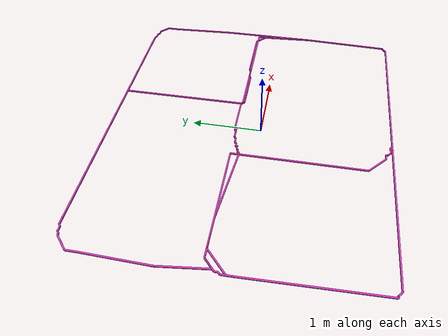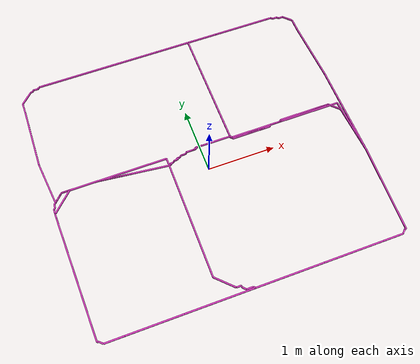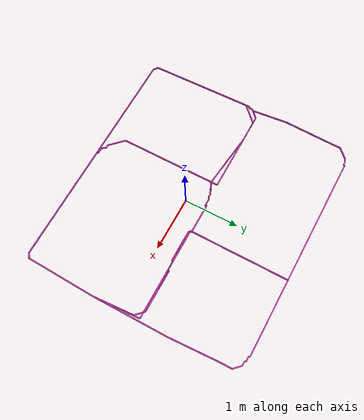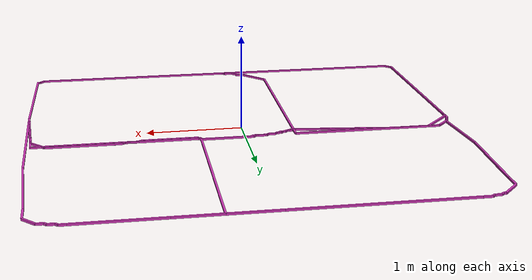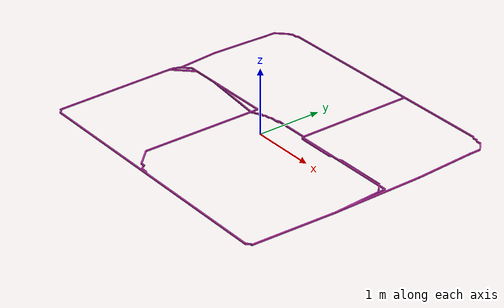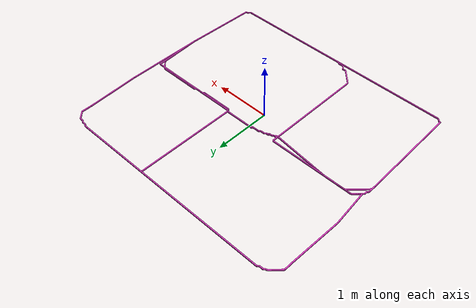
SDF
<sdf version="1.7">
 <world name="autonomous_map_3d_world">
  <model name="route_preview_code_transform_magenta">
   <static>1</static>
   <link name="route_preview_link">
    <visual name="route_segment_0000">
     <pose>-0.937500 2.179688 0.040000 0.000000 0.000000 0.000000</pose>
     <geometry><box><size>1.781250 0.020000 0.020000</size></box></geometry>
     <material>
      <script><name>Gazebo/RoutePreviewMagenta</name></script>
      <ambient>1 0 1 1</ambient>
      <diffuse>1 0 1 1</diffuse>
      <emissive>0.7 0 0.7 1</emissive>
     </material>
    </visual>
    <visual name="route_segment_0001">
     <pose>0.210938 2.179688 0.040000 0.000000 0.000000 0.000000</pose>
     <geometry><box><size>0.515625 0.020000 0.020000</size></box></geometry>
     <material>
      <script><name>Gazebo/RoutePreviewMagenta</name></script>
      <ambient>1 0 1 1</ambient>
      <diffuse>1 0 1 1</diffuse>
      <emissive>0.7 0 0.7 1</emissive>
     </material>
    </visual>
    <visual name="route_segment_0002">
     <pose>0.703125 2.179688 0.040000 0.000000 0.000000 0.000000</pose>
     <geometry><box><size>0.468750 0.020000 0.020000</size></box></geometry>
     <material>
      <script><name>Gazebo/RoutePreviewMagenta</name></script>
      <ambient>1 0 1 1</ambient>
      <diffuse>1 0 1 1</diffuse>
      <emissive>0.7 0 0.7 1</emissive>
     </material>
    </visual>
    <visual name="route_segment_0003">
     <pose>1.371094 2.179688 0.040000 0.000000 0.000000 0.000000</pose>
     <geometry><box><size>0.867188 0.020000 0.020000</size></box></geometry>
     <material>
      <script><name>Gazebo/RoutePreviewMagenta</name></script>
      <ambient>1 0 1 1</ambient>
      <diffuse>1 0 1 1</diffuse>
      <emissive>0.7 0 0.7 1</emissive>
     </material>
    </visual>
    <visual name="route_segment_0004">
     <pose>1.839844 2.179688 0.040000 0.000000 0.000000 0.000000</pose>
     <geometry><box><size>0.070312 0.020000 0.020000</size></box></geometry>
     <material>
      <script><name>Gazebo/RoutePreviewMagenta</name></script>
      <ambient>1 0 1 1</ambient>
      <diffuse>1 0 1 1</diffuse>
      <emissive>0.7 0 0.7 1</emissive>
     </material>
    </visual>
    <visual name="route_segment_0005">
     <pose>1.886719 2.167969 0.040000 0.000000 0.000000 -0.785398</pose>
     <geometry><box><size>0.033146 0.020000 0.020000</size></box></geometry>
     <material>
      <script><name>Gazebo/RoutePreviewMagenta</name></script>
      <ambient>1 0 1 1</ambient>
      <diffuse>1 0 1 1</diffuse>
      <emissive>0.7 0 0.7 1</emissive>
     </material>
    </visual>
    <visual name="route_segment_0006">
     <pose>1.933594 2.156250 0.040000 0.000000 0.000000 0.000000</pose>
     <geometry><box><size>0.070312 0.020000 0.020000</size></box></geometry>
     <material>
      <script><name>Gazebo/RoutePreviewMagenta</name></script>
      <ambient>1 0 1 1</ambient>
      <diffuse>1 0 1 1</diffuse>
      <emissive>0.7 0 0.7 1</emissive>
     </material>
    </visual>
    <visual name="route_segment_0007">
     <pose>1.980469 2.144531 0.040000 0.000000 0.000000 -0.785398</pose>
     <geometry><box><size>0.033146 0.020000 0.020000</size></box></geometry>
     <material>
      <script><name>Gazebo/RoutePreviewMagenta</name></script>
      <ambient>1 0 1 1</ambient>
      <diffuse>1 0 1 1</diffuse>
      <emissive>0.7 0 0.7 1</emissive>
     </material>
    </visual>
    <visual name="route_segment_0008">
     <pose>2.027344 2.132812 0.040000 0.000000 0.000000 0.000000</pose>
     <geometry><box><size>0.070312 0.020000 0.020000</size></box></geometry>
     <material>
      <script><name>Gazebo/RoutePreviewMagenta</name></script>
      <ambient>1 0 1 1</ambient>
      <diffuse>1 0 1 1</diffuse>
      <emissive>0.7 0 0.7 1</emissive>
     </material>
    </visual>
    <visual name="route_segment_0009">
     <pose>2.121094 2.074219 0.040000 0.000000 0.000000 -0.785398</pose>
     <geometry><box><size>0.165728 0.020000 0.020000</size></box></geometry>
     <material>
      <script><name>Gazebo/RoutePreviewMagenta</name></script>
      <ambient>1 0 1 1</ambient>
      <diffuse>1 0 1 1</diffuse>
      <emissive>0.7 0 0.7 1</emissive>
     </material>
    </visual>
    <visual name="route_segment_0010">
     <pose>2.179688 1.921875 0.040000 0.000000 0.000000 -1.570796</pose>
     <geometry><box><size>0.187500 0.020000 0.020000</size></box></geometry>
     <material>
      <script><name>Gazebo/RoutePreviewMagenta</name></script>
      <ambient>1 0 1 1</ambient>
      <diffuse>1 0 1 1</diffuse>
      <emissive>0.7 0 0.7 1</emissive>
     </material>
    </visual>
    <visual name="route_segment_0011">
     <pose>2.203125 1.359375 0.040000 0.000000 0.000000 -1.520838</pose>
     <geometry><box><size>0.938671 0.020000 0.020000</size></box></geometry>
     <material>
      <script><name>Gazebo/RoutePreviewMagenta</name></script>
      <ambient>1 0 1 1</ambient>
      <diffuse>1 0 1 1</diffuse>
      <emissive>0.7 0 0.7 1</emissive>
     </material>
    </visual>
    <visual name="route_segment_0012">
     <pose>2.226562 0.187500 0.040000 0.000000 0.000000 -1.570796</pose>
     <geometry><box><size>1.406250 0.020000 0.020000</size></box></geometry>
     <material>
      <script><name>Gazebo/RoutePreviewMagenta</name></script>
      <ambient>1 0 1 1</ambient>
      <diffuse>1 0 1 1</diffuse>
      <emissive>0.7 0 0.7 1</emissive>
     </material>
    </visual>
    <visual name="route_segment_0013">
     <pose>2.203125 -1.160156 0.040000 0.000000 0.000000 -1.607144</pose>
     <geometry><box><size>1.289914 0.020000 0.020000</size></box></geometry>
     <material>
      <script><name>Gazebo/RoutePreviewMagenta</name></script>
      <ambient>1 0 1 1</ambient>
      <diffuse>1 0 1 1</diffuse>
      <emissive>0.7 0 0.7 1</emissive>
     </material>
    </visual>
    <visual name="route_segment_0014">
     <pose>2.167969 -1.804688 0.040000 0.000000 0.000000 3.141593</pose>
     <geometry><box><size>0.023438 0.020000 0.020000</size></box></geometry>
     <material>
      <script><name>Gazebo/RoutePreviewMagenta</name></script>
      <ambient>1 0 1 1</ambient>
      <diffuse>1 0 1 1</diffuse>
      <emissive>0.7 0 0.7 1</emissive>
     </material>
    </visual>
    <visual name="route_segment_0015">
     <pose>2.132812 -1.828125 0.040000 0.000000 0.000000 -2.356194</pose>
     <geometry><box><size>0.066291 0.020000 0.020000</size></box></geometry>
     <material>
      <script><name>Gazebo/RoutePreviewMagenta</name></script>
      <ambient>1 0 1 1</ambient>
      <diffuse>1 0 1 1</diffuse>
      <emissive>0.7 0 0.7 1</emissive>
     </material>
    </visual>
    <visual name="route_segment_0016">
     <pose>1.957031 -1.851562 0.040000 0.000000 0.000000 3.141593</pose>
     <geometry><box><size>0.304688 0.020000 0.020000</size></box></geometry>
     <material>
      <script><name>Gazebo/RoutePreviewMagenta</name></script>
      <ambient>1 0 1 1</ambient>
      <diffuse>1 0 1 1</diffuse>
      <emissive>0.7 0 0.7 1</emissive>
     </material>
    </visual>
    <visual name="route_segment_0017">
     <pose>1.371094 -1.851562 0.040000 0.000000 0.000000 3.141593</pose>
     <geometry><box><size>0.867188 0.020000 0.020000</size></box></geometry>
     <material>
      <script><name>Gazebo/RoutePreviewMagenta</name></script>
      <ambient>1 0 1 1</ambient>
      <diffuse>1 0 1 1</diffuse>
      <emissive>0.7 0 0.7 1</emissive>
     </material>
    </visual>
    <visual name="route_segment_0018">
     <pose>0.445312 -1.851562 0.040000 0.000000 0.000000 3.141593</pose>
     <geometry><box><size>0.984375 0.020000 0.020000</size></box></geometry>
     <material>
      <script><name>Gazebo/RoutePreviewMagenta</name></script>
      <ambient>1 0 1 1</ambient>
      <diffuse>1 0 1 1</diffuse>
      <emissive>0.7 0 0.7 1</emissive>
     </material>
    </visual>
    <visual name="route_segment_0019">
     <pose>-0.539062 -1.851562 0.040000 0.000000 0.000000 3.141593</pose>
     <geometry><box><size>0.984375 0.020000 0.020000</size></box></geometry>
     <material>
      <script><name>Gazebo/RoutePreviewMagenta</name></script>
      <ambient>1 0 1 1</ambient>
      <diffuse>1 0 1 1</diffuse>
      <emissive>0.7 0 0.7 1</emissive>
     </material>
    </visual>
    <visual name="route_segment_0020">
     <pose>-1.429688 -1.851562 0.040000 0.000000 0.000000 3.141593</pose>
     <geometry><box><size>0.796875 0.020000 0.020000</size></box></geometry>
     <material>
      <script><name>Gazebo/RoutePreviewMagenta</name></script>
      <ambient>1 0 1 1</ambient>
      <diffuse>1 0 1 1</diffuse>
      <emissive>0.7 0 0.7 1</emissive>
     </material>
    </visual>
    <visual name="route_segment_0021">
     <pose>-1.968750 -1.851562 0.040000 0.000000 0.000000 3.141593</pose>
     <geometry><box><size>0.281250 0.020000 0.020000</size></box></geometry>
     <material>
      <script><name>Gazebo/RoutePreviewMagenta</name></script>
      <ambient>1 0 1 1</ambient>
      <diffuse>1 0 1 1</diffuse>
      <emissive>0.7 0 0.7 1</emissive>
     </material>
    </visual>
    <visual name="route_segment_0022">
     <pose>-2.132812 -1.828125 0.040000 0.000000 0.000000 2.356194</pose>
     <geometry><box><size>0.066291 0.020000 0.020000</size></box></geometry>
     <material>
      <script><name>Gazebo/RoutePreviewMagenta</name></script>
      <ambient>1 0 1 1</ambient>
      <diffuse>1 0 1 1</diffuse>
      <emissive>0.7 0 0.7 1</emissive>
     </material>
    </visual>
    <visual name="route_segment_0023">
     <pose>-2.167969 -1.804688 0.040000 0.000000 0.000000 3.141593</pose>
     <geometry><box><size>0.023438 0.020000 0.020000</size></box></geometry>
     <material>
      <script><name>Gazebo/RoutePreviewMagenta</name></script>
      <ambient>1 0 1 1</ambient>
      <diffuse>1 0 1 1</diffuse>
      <emissive>0.7 0 0.7 1</emissive>
     </material>
    </visual>
    <visual name="route_segment_0024">
     <pose>-2.203125 -0.902344 0.040000 0.000000 0.000000 1.596765</pose>
     <geometry><box><size>1.805296 0.020000 0.020000</size></box></geometry>
     <material>
      <script><name>Gazebo/RoutePreviewMagenta</name></script>
      <ambient>1 0 1 1</ambient>
      <diffuse>1 0 1 1</diffuse>
      <emissive>0.7 0 0.7 1</emissive>
     </material>
    </visual>
    <visual name="route_segment_0025">
     <pose>-2.226562 0.070312 0.040000 0.000000 0.000000 1.570796</pose>
     <geometry><box><size>0.140625 0.020000 0.020000</size></box></geometry>
     <material>
      <script><name>Gazebo/RoutePreviewMagenta</name></script>
      <ambient>1 0 1 1</ambient>
      <diffuse>1 0 1 1</diffuse>
      <emissive>0.7 0 0.7 1</emissive>
     </material>
    </visual>
    <visual name="route_segment_0026">
     <pose>-2.214844 0.152344 0.040000 0.000000 0.000000 0.785398</pose>
     <geometry><box><size>0.033146 0.020000 0.020000</size></box></geometry>
     <material>
      <script><name>Gazebo/RoutePreviewMagenta</name></script>
      <ambient>1 0 1 1</ambient>
      <diffuse>1 0 1 1</diffuse>
      <emissive>0.7 0 0.7 1</emissive>
     </material>
    </visual>
    <visual name="route_segment_0027">
     <pose>-2.203125 0.187500 0.040000 0.000000 0.000000 1.570796</pose>
     <geometry><box><size>0.046875 0.020000 0.020000</size></box></geometry>
     <material>
      <script><name>Gazebo/RoutePreviewMagenta</name></script>
      <ambient>1 0 1 1</ambient>
      <diffuse>1 0 1 1</diffuse>
      <emissive>0.7 0 0.7 1</emissive>
     </material>
    </visual>
    <visual name="route_segment_0028">
     <pose>-2.191406 0.222656 0.040000 0.000000 0.000000 0.785398</pose>
     <geometry><box><size>0.033146 0.020000 0.020000</size></box></geometry>
     <material>
      <script><name>Gazebo/RoutePreviewMagenta</name></script>
      <ambient>1 0 1 1</ambient>
      <diffuse>1 0 1 1</diffuse>
      <emissive>0.7 0 0.7 1</emissive>
     </material>
    </visual>
    <visual name="route_segment_0029">
     <pose>-2.214844 0.562500 0.040000 0.000000 0.000000 1.677532</pose>
     <geometry><box><size>0.660006 0.020000 0.020000</size></box></geometry>
     <material>
      <script><name>Gazebo/RoutePreviewMagenta</name></script>
      <ambient>1 0 1 1</ambient>
      <diffuse>1 0 1 1</diffuse>
      <emissive>0.7 0 0.7 1</emissive>
     </material>
    </visual>
    <visual name="route_segment_0030">
     <pose>-2.238281 1.347656 0.040000 0.000000 0.000000 1.545161</pose>
     <geometry><box><size>0.914363 0.020000 0.020000</size></box></geometry>
     <material>
      <script><name>Gazebo/RoutePreviewMagenta</name></script>
      <ambient>1 0 1 1</ambient>
      <diffuse>1 0 1 1</diffuse>
      <emissive>0.7 0 0.7 1</emissive>
     </material>
    </visual>
    <visual name="route_segment_0031">
     <pose>-2.226562 1.886719 0.040000 0.000000 0.000000 1.570796</pose>
     <geometry><box><size>0.164062 0.020000 0.020000</size></box></geometry>
     <material>
      <script><name>Gazebo/RoutePreviewMagenta</name></script>
      <ambient>1 0 1 1</ambient>
      <diffuse>1 0 1 1</diffuse>
      <emissive>0.7 0 0.7 1</emissive>
     </material>
    </visual>
    <visual name="route_segment_0032">
     <pose>-2.144531 2.050781 0.040000 0.000000 0.000000 0.785398</pose>
     <geometry><box><size>0.232019 0.020000 0.020000</size></box></geometry>
     <material>
      <script><name>Gazebo/RoutePreviewMagenta</name></script>
      <ambient>1 0 1 1</ambient>
      <diffuse>1 0 1 1</diffuse>
      <emissive>0.7 0 0.7 1</emissive>
     </material>
    </visual>
    <visual name="route_segment_0033">
     <pose>-2.050781 2.132812 0.040000 0.000000 0.000000 0.000000</pose>
     <geometry><box><size>0.023438 0.020000 0.020000</size></box></geometry>
     <material>
      <script><name>Gazebo/RoutePreviewMagenta</name></script>
      <ambient>1 0 1 1</ambient>
      <diffuse>1 0 1 1</diffuse>
      <emissive>0.7 0 0.7 1</emissive>
     </material>
    </visual>
    <visual name="route_segment_0034">
     <pose>-2.027344 2.144531 0.040000 0.000000 0.000000 0.785398</pose>
     <geometry><box><size>0.033146 0.020000 0.020000</size></box></geometry>
     <material>
      <script><name>Gazebo/RoutePreviewMagenta</name></script>
      <ambient>1 0 1 1</ambient>
      <diffuse>1 0 1 1</diffuse>
      <emissive>0.7 0 0.7 1</emissive>
     </material>
    </visual>
    <visual name="route_segment_0035">
     <pose>-1.980469 2.156250 0.040000 0.000000 0.000000 0.000000</pose>
     <geometry><box><size>0.070312 0.020000 0.020000</size></box></geometry>
     <material>
      <script><name>Gazebo/RoutePreviewMagenta</name></script>
      <ambient>1 0 1 1</ambient>
      <diffuse>1 0 1 1</diffuse>
      <emissive>0.7 0 0.7 1</emissive>
     </material>
    </visual>
    <visual name="route_segment_0036">
     <pose>-1.933594 2.167969 0.040000 0.000000 0.000000 0.785398</pose>
     <geometry><box><size>0.033146 0.020000 0.020000</size></box></geometry>
     <material>
      <script><name>Gazebo/RoutePreviewMagenta</name></script>
      <ambient>1 0 1 1</ambient>
      <diffuse>1 0 1 1</diffuse>
      <emissive>0.7 0 0.7 1</emissive>
     </material>
    </visual>
    <visual name="route_segment_0037">
     <pose>-1.875000 2.179688 0.040000 0.000000 0.000000 0.000000</pose>
     <geometry><box><size>0.093750 0.020000 0.020000</size></box></geometry>
     <material>
      <script><name>Gazebo/RoutePreviewMagenta</name></script>
      <ambient>1 0 1 1</ambient>
      <diffuse>1 0 1 1</diffuse>
      <emissive>0.7 0 0.7 1</emissive>
     </material>
    </visual>
    <visual name="route_segment_0038">
     <pose>0.468750 1.265625 0.040000 0.000000 0.000000 -1.570796</pose>
     <geometry><box><size>1.828125 0.020000 0.020000</size></box></geometry>
     <material>
      <script><name>Gazebo/RoutePreviewMagenta</name></script>
      <ambient>1 0 1 1</ambient>
      <diffuse>1 0 1 1</diffuse>
      <emissive>0.7 0 0.7 1</emissive>
     </material>
    </visual>
    <visual name="route_segment_0039">
     <pose>1.324219 0.351562 0.040000 0.000000 0.000000 0.000000</pose>
     <geometry><box><size>1.710938 0.020000 0.020000</size></box></geometry>
     <material>
      <script><name>Gazebo/RoutePreviewMagenta</name></script>
      <ambient>1 0 1 1</ambient>
      <diffuse>1 0 1 1</diffuse>
      <emissive>0.7 0 0.7 1</emissive>
     </material>
    </visual>
    <visual name="route_segment_0040">
     <pose>2.203125 -0.082031 0.040000 0.000000 0.000000 -1.516795</pose>
     <geometry><box><size>0.868453 0.020000 0.020000</size></box></geometry>
     <material>
      <script><name>Gazebo/RoutePreviewMagenta</name></script>
      <ambient>1 0 1 1</ambient>
      <diffuse>1 0 1 1</diffuse>
      <emissive>0.7 0 0.7 1</emissive>
     </material>
    </visual>
    <visual name="route_segment_0041">
     <pose>-2.121094 0.292969 0.040000 0.000000 0.000000 0.785398</pose>
     <geometry><box><size>0.165728 0.020000 0.020000</size></box></geometry>
     <material>
      <script><name>Gazebo/RoutePreviewMagenta</name></script>
      <ambient>1 0 1 1</ambient>
      <diffuse>1 0 1 1</diffuse>
      <emissive>0.7 0 0.7 1</emissive>
     </material>
    </visual>
    <visual name="route_segment_0042">
     <pose>-1.804688 0.351562 0.040000 0.000000 0.000000 0.000000</pose>
     <geometry><box><size>0.515625 0.020000 0.020000</size></box></geometry>
     <material>
      <script><name>Gazebo/RoutePreviewMagenta</name></script>
      <ambient>1 0 1 1</ambient>
      <diffuse>1 0 1 1</diffuse>
      <emissive>0.7 0 0.7 1</emissive>
     </material>
    </visual>
    <visual name="route_segment_0043">
     <pose>-1.031250 0.292969 0.040000 0.000000 0.000000 -0.113151</pose>
     <geometry><box><size>1.037887 0.020000 0.020000</size></box></geometry>
     <material>
      <script><name>Gazebo/RoutePreviewMagenta</name></script>
      <ambient>1 0 1 1</ambient>
      <diffuse>1 0 1 1</diffuse>
      <emissive>0.7 0 0.7 1</emissive>
     </material>
    </visual>
    <visual name="route_segment_0044">
     <pose>-0.503906 0.234375 0.040000 0.000000 0.000000 0.000000</pose>
     <geometry><box><size>0.023438 0.020000 0.020000</size></box></geometry>
     <material>
      <script><name>Gazebo/RoutePreviewMagenta</name></script>
      <ambient>1 0 1 1</ambient>
      <diffuse>1 0 1 1</diffuse>
      <emissive>0.7 0 0.7 1</emissive>
     </material>
    </visual>
    <visual name="route_segment_0045">
     <pose>-0.480469 0.246094 0.040000 0.000000 0.000000 0.785398</pose>
     <geometry><box><size>0.033146 0.020000 0.020000</size></box></geometry>
     <material>
      <script><name>Gazebo/RoutePreviewMagenta</name></script>
      <ambient>1 0 1 1</ambient>
      <diffuse>1 0 1 1</diffuse>
      <emissive>0.7 0 0.7 1</emissive>
     </material>
    </visual>
    <visual name="route_segment_0046">
     <pose>-0.457031 0.257812 0.040000 0.000000 0.000000 0.000000</pose>
     <geometry><box><size>0.023438 0.020000 0.020000</size></box></geometry>
     <material>
      <script><name>Gazebo/RoutePreviewMagenta</name></script>
      <ambient>1 0 1 1</ambient>
      <diffuse>1 0 1 1</diffuse>
      <emissive>0.7 0 0.7 1</emissive>
     </material>
    </visual>
    <visual name="route_segment_0047">
     <pose>-0.433594 0.269531 0.040000 0.000000 0.000000 0.785398</pose>
     <geometry><box><size>0.033146 0.020000 0.020000</size></box></geometry>
     <material>
      <script><name>Gazebo/RoutePreviewMagenta</name></script>
      <ambient>1 0 1 1</ambient>
      <diffuse>1 0 1 1</diffuse>
      <emissive>0.7 0 0.7 1</emissive>
     </material>
    </visual>
    <visual name="route_segment_0048">
     <pose>-0.398438 0.281250 0.040000 0.000000 0.000000 0.000000</pose>
     <geometry><box><size>0.046875 0.020000 0.020000</size></box></geometry>
     <material>
      <script><name>Gazebo/RoutePreviewMagenta</name></script>
      <ambient>1 0 1 1</ambient>
      <diffuse>1 0 1 1</diffuse>
      <emissive>0.7 0 0.7 1</emissive>
     </material>
    </visual>
    <visual name="route_segment_0049">
     <pose>-0.363281 0.292969 0.040000 0.000000 0.000000 0.785398</pose>
     <geometry><box><size>0.033146 0.020000 0.020000</size></box></geometry>
     <material>
      <script><name>Gazebo/RoutePreviewMagenta</name></script>
      <ambient>1 0 1 1</ambient>
      <diffuse>1 0 1 1</diffuse>
      <emissive>0.7 0 0.7 1</emissive>
     </material>
    </visual>
    <visual name="route_segment_0050">
     <pose>-0.339844 0.304688 0.040000 0.000000 0.000000 0.000000</pose>
     <geometry><box><size>0.023438 0.020000 0.020000</size></box></geometry>
     <material>
      <script><name>Gazebo/RoutePreviewMagenta</name></script>
      <ambient>1 0 1 1</ambient>
      <diffuse>1 0 1 1</diffuse>
      <emissive>0.7 0 0.7 1</emissive>
     </material>
    </visual>
    <visual name="route_segment_0051">
     <pose>-0.316406 0.316406 0.040000 0.000000 0.000000 0.785398</pose>
     <geometry><box><size>0.033146 0.020000 0.020000</size></box></geometry>
     <material>
      <script><name>Gazebo/RoutePreviewMagenta</name></script>
      <ambient>1 0 1 1</ambient>
      <diffuse>1 0 1 1</diffuse>
      <emissive>0.7 0 0.7 1</emissive>
     </material>
    </visual>
    <visual name="route_segment_0052">
     <pose>-0.269531 0.328125 0.040000 0.000000 0.000000 0.000000</pose>
     <geometry><box><size>0.070312 0.020000 0.020000</size></box></geometry>
     <material>
      <script><name>Gazebo/RoutePreviewMagenta</name></script>
      <ambient>1 0 1 1</ambient>
      <diffuse>1 0 1 1</diffuse>
      <emissive>0.7 0 0.7 1</emissive>
     </material>
    </visual>
    <visual name="route_segment_0053">
     <pose>-0.222656 0.339844 0.040000 0.000000 0.000000 0.785398</pose>
     <geometry><box><size>0.033146 0.020000 0.020000</size></box></geometry>
     <material>
      <script><name>Gazebo/RoutePreviewMagenta</name></script>
      <ambient>1 0 1 1</ambient>
      <diffuse>1 0 1 1</diffuse>
      <emissive>0.7 0 0.7 1</emissive>
     </material>
    </visual>
    <visual name="route_segment_0054">
     <pose>-0.140625 0.351562 0.040000 0.000000 0.000000 0.000000</pose>
     <geometry><box><size>0.140625 0.020000 0.020000</size></box></geometry>
     <material>
      <script><name>Gazebo/RoutePreviewMagenta</name></script>
      <ambient>1 0 1 1</ambient>
      <diffuse>1 0 1 1</diffuse>
      <emissive>0.7 0 0.7 1</emissive>
     </material>
    </visual>
    <visual name="route_segment_0055">
     <pose>-0.058594 0.363281 0.040000 0.000000 0.000000 0.785398</pose>
     <geometry><box><size>0.033146 0.020000 0.020000</size></box></geometry>
     <material>
      <script><name>Gazebo/RoutePreviewMagenta</name></script>
      <ambient>1 0 1 1</ambient>
      <diffuse>1 0 1 1</diffuse>
      <emissive>0.7 0 0.7 1</emissive>
     </material>
    </visual>
    <visual name="route_segment_0056">
     <pose>0.210938 0.375000 0.040000 0.000000 0.000000 0.000000</pose>
     <geometry><box><size>0.515625 0.020000 0.020000</size></box></geometry>
     <material>
      <script><name>Gazebo/RoutePreviewMagenta</name></script>
      <ambient>1 0 1 1</ambient>
      <diffuse>1 0 1 1</diffuse>
      <emissive>0.7 0 0.7 1</emissive>
     </material>
    </visual>
    <visual name="route_segment_0057">
     <pose>0.480469 0.363281 0.040000 0.000000 0.000000 -0.785398</pose>
     <geometry><box><size>0.033146 0.020000 0.020000</size></box></geometry>
     <material>
      <script><name>Gazebo/RoutePreviewMagenta</name></script>
      <ambient>1 0 1 1</ambient>
      <diffuse>1 0 1 1</diffuse>
      <emissive>0.7 0 0.7 1</emissive>
     </material>
    </visual>
    <visual name="route_segment_0058">
     <pose>0.492188 0.339844 0.040000 0.000000 0.000000 -1.570796</pose>
     <geometry><box><size>0.023438 0.020000 0.020000</size></box></geometry>
     <material>
      <script><name>Gazebo/RoutePreviewMagenta</name></script>
      <ambient>1 0 1 1</ambient>
      <diffuse>1 0 1 1</diffuse>
      <emissive>0.7 0 0.7 1</emissive>
     </material>
    </visual>
    <visual name="route_segment_0059">
     <pose>0.785156 0.328125 0.040000 0.000000 0.000000 0.000000</pose>
     <geometry><box><size>0.585938 0.020000 0.020000</size></box></geometry>
     <material>
      <script><name>Gazebo/RoutePreviewMagenta</name></script>
      <ambient>1 0 1 1</ambient>
      <diffuse>1 0 1 1</diffuse>
      <emissive>0.7 0 0.7 1</emissive>
     </material>
    </visual>
    <visual name="route_segment_0060">
     <pose>1.089844 0.339844 0.040000 0.000000 0.000000 0.785398</pose>
     <geometry><box><size>0.033146 0.020000 0.020000</size></box></geometry>
     <material>
      <script><name>Gazebo/RoutePreviewMagenta</name></script>
      <ambient>1 0 1 1</ambient>
      <diffuse>1 0 1 1</diffuse>
      <emissive>0.7 0 0.7 1</emissive>
     </material>
    </visual>
    <visual name="route_segment_0061">
     <pose>1.183594 0.351562 0.040000 0.000000 0.000000 0.000000</pose>
     <geometry><box><size>0.164062 0.020000 0.020000</size></box></geometry>
     <material>
      <script><name>Gazebo/RoutePreviewMagenta</name></script>
      <ambient>1 0 1 1</ambient>
      <diffuse>1 0 1 1</diffuse>
      <emissive>0.7 0 0.7 1</emissive>
     </material>
    </visual>
    <visual name="route_segment_0062">
     <pose>1.277344 0.363281 0.040000 0.000000 0.000000 0.785398</pose>
     <geometry><box><size>0.033146 0.020000 0.020000</size></box></geometry>
     <material>
      <script><name>Gazebo/RoutePreviewMagenta</name></script>
      <ambient>1 0 1 1</ambient>
      <diffuse>1 0 1 1</diffuse>
      <emissive>0.7 0 0.7 1</emissive>
     </material>
    </visual>
    <visual name="route_segment_0063">
     <pose>1.664062 0.375000 0.040000 0.000000 0.000000 0.000000</pose>
     <geometry><box><size>0.750000 0.020000 0.020000</size></box></geometry>
     <material>
      <script><name>Gazebo/RoutePreviewMagenta</name></script>
      <ambient>1 0 1 1</ambient>
      <diffuse>1 0 1 1</diffuse>
      <emissive>0.7 0 0.7 1</emissive>
     </material>
    </visual>
    <visual name="route_segment_0064">
     <pose>2.109375 0.304688 0.040000 0.000000 0.000000 -0.785398</pose>
     <geometry><box><size>0.198874 0.020000 0.020000</size></box></geometry>
     <material>
      <script><name>Gazebo/RoutePreviewMagenta</name></script>
      <ambient>1 0 1 1</ambient>
      <diffuse>1 0 1 1</diffuse>
      <emissive>0.7 0 0.7 1</emissive>
     </material>
    </visual>
    <visual name="route_segment_0065">
     <pose>2.203125 -0.140625 0.040000 0.000000 0.000000 -1.508378</pose>
     <geometry><box><size>0.751463 0.020000 0.020000</size></box></geometry>
     <material>
      <script><name>Gazebo/RoutePreviewMagenta</name></script>
      <ambient>1 0 1 1</ambient>
      <diffuse>1 0 1 1</diffuse>
      <emissive>0.7 0 0.7 1</emissive>
     </material>
    </visual>
    <visual name="route_segment_0066">
     <pose>-0.058594 -1.839844 0.040000 0.000000 0.000000 2.356194</pose>
     <geometry><box><size>0.033146 0.020000 0.020000</size></box></geometry>
     <material>
      <script><name>Gazebo/RoutePreviewMagenta</name></script>
      <ambient>1 0 1 1</ambient>
      <diffuse>1 0 1 1</diffuse>
      <emissive>0.7 0 0.7 1</emissive>
     </material>
    </visual>
    <visual name="route_segment_0067">
     <pose>-0.117188 -1.828125 0.040000 0.000000 0.000000 3.141593</pose>
     <geometry><box><size>0.093750 0.020000 0.020000</size></box></geometry>
     <material>
      <script><name>Gazebo/RoutePreviewMagenta</name></script>
      <ambient>1 0 1 1</ambient>
      <diffuse>1 0 1 1</diffuse>
      <emissive>0.7 0 0.7 1</emissive>
     </material>
    </visual>
    <visual name="route_segment_0068">
     <pose>-0.187500 -1.804688 0.040000 0.000000 0.000000 2.356194</pose>
     <geometry><box><size>0.066291 0.020000 0.020000</size></box></geometry>
     <material>
      <script><name>Gazebo/RoutePreviewMagenta</name></script>
      <ambient>1 0 1 1</ambient>
      <diffuse>1 0 1 1</diffuse>
      <emissive>0.7 0 0.7 1</emissive>
     </material>
    </visual>
    <visual name="route_segment_0069">
     <pose>-0.210938 -1.769531 0.040000 0.000000 0.000000 1.570796</pose>
     <geometry><box><size>0.023438 0.020000 0.020000</size></box></geometry>
     <material>
      <script><name>Gazebo/RoutePreviewMagenta</name></script>
      <ambient>1 0 1 1</ambient>
      <diffuse>1 0 1 1</diffuse>
      <emissive>0.7 0 0.7 1</emissive>
     </material>
    </visual>
    <visual name="route_segment_0070">
     <pose>-0.246094 -1.757812 0.040000 0.000000 0.000000 3.141593</pose>
     <geometry><box><size>0.070312 0.020000 0.020000</size></box></geometry>
     <material>
      <script><name>Gazebo/RoutePreviewMagenta</name></script>
      <ambient>1 0 1 1</ambient>
      <diffuse>1 0 1 1</diffuse>
      <emissive>0.7 0 0.7 1</emissive>
     </material>
    </visual>
    <visual name="route_segment_0071">
     <pose>-0.398438 -1.640625 0.040000 0.000000 0.000000 2.356194</pose>
     <geometry><box><size>0.331456 0.020000 0.020000</size></box></geometry>
     <material>
      <script><name>Gazebo/RoutePreviewMagenta</name></script>
      <ambient>1 0 1 1</ambient>
      <diffuse>1 0 1 1</diffuse>
      <emissive>0.7 0 0.7 1</emissive>
     </material>
    </visual>
    <visual name="route_segment_0072">
     <pose>-0.515625 -0.585938 0.040000 0.000000 0.000000 1.570796</pose>
     <geometry><box><size>1.875000 0.020000 0.020000</size></box></geometry>
     <material>
      <script><name>Gazebo/RoutePreviewMagenta</name></script>
      <ambient>1 0 1 1</ambient>
      <diffuse>1 0 1 1</diffuse>
      <emissive>0.7 0 0.7 1</emissive>
     </material>
    </visual>
    <visual name="route_segment_0073">
     <pose>-1.230469 0.351562 0.040000 0.000000 0.000000 3.141593</pose>
     <geometry><box><size>1.429688 0.020000 0.020000</size></box></geometry>
     <material>
      <script><name>Gazebo/RoutePreviewMagenta</name></script>
      <ambient>1 0 1 1</ambient>
      <diffuse>1 0 1 1</diffuse>
      <emissive>0.7 0 0.7 1</emissive>
     </material>
    </visual>
    <visual name="route_segment_0074">
     <pose>-2.085938 0.210938 0.040000 0.000000 0.000000 -2.356194</pose>
     <geometry><box><size>0.397748 0.020000 0.020000</size></box></geometry>
     <material>
      <script><name>Gazebo/RoutePreviewMagenta</name></script>
      <ambient>1 0 1 1</ambient>
      <diffuse>1 0 1 1</diffuse>
      <emissive>0.7 0 0.7 1</emissive>
     </material>
    </visual>
    <visual name="route_segment_0075">
     <pose>-2.226562 0.035156 0.040000 0.000000 0.000000 -1.570796</pose>
     <geometry><box><size>0.070312 0.020000 0.020000</size></box></geometry>
     <material>
      <script><name>Gazebo/RoutePreviewMagenta</name></script>
      <ambient>1 0 1 1</ambient>
      <diffuse>1 0 1 1</diffuse>
      <emissive>0.7 0 0.7 1</emissive>
     </material>
    </visual>
    <visual name="route_segment_0076">
     <pose>2.203125 -0.140625 0.040000 0.000000 0.000000 1.633215</pose>
     <geometry><box><size>0.751463 0.020000 0.020000</size></box></geometry>
     <material>
      <script><name>Gazebo/RoutePreviewMagenta</name></script>
      <ambient>1 0 1 1</ambient>
      <diffuse>1 0 1 1</diffuse>
      <emissive>0.7 0 0.7 1</emissive>
     </material>
    </visual>
    <visual name="route_segment_0077">
     <pose>2.109375 0.304688 0.040000 0.000000 0.000000 2.356194</pose>
     <geometry><box><size>0.198874 0.020000 0.020000</size></box></geometry>
     <material>
      <script><name>Gazebo/RoutePreviewMagenta</name></script>
      <ambient>1 0 1 1</ambient>
      <diffuse>1 0 1 1</diffuse>
      <emissive>0.7 0 0.7 1</emissive>
     </material>
    </visual>
    <visual name="route_segment_0078">
     <pose>1.652344 0.375000 0.040000 0.000000 0.000000 3.141593</pose>
     <geometry><box><size>0.773438 0.020000 0.020000</size></box></geometry>
     <material>
      <script><name>Gazebo/RoutePreviewMagenta</name></script>
      <ambient>1 0 1 1</ambient>
      <diffuse>1 0 1 1</diffuse>
      <emissive>0.7 0 0.7 1</emissive>
     </material>
    </visual>
    <visual name="route_segment_0079">
     <pose>1.253906 0.363281 0.040000 0.000000 0.000000 -2.356194</pose>
     <geometry><box><size>0.033146 0.020000 0.020000</size></box></geometry>
     <material>
      <script><name>Gazebo/RoutePreviewMagenta</name></script>
      <ambient>1 0 1 1</ambient>
      <diffuse>1 0 1 1</diffuse>
      <emissive>0.7 0 0.7 1</emissive>
     </material>
    </visual>
    <visual name="route_segment_0080">
     <pose>1.171875 0.351562 0.040000 0.000000 0.000000 3.141593</pose>
     <geometry><box><size>0.140625 0.020000 0.020000</size></box></geometry>
     <material>
      <script><name>Gazebo/RoutePreviewMagenta</name></script>
      <ambient>1 0 1 1</ambient>
      <diffuse>1 0 1 1</diffuse>
      <emissive>0.7 0 0.7 1</emissive>
     </material>
    </visual>
    <visual name="route_segment_0081">
     <pose>1.089844 0.339844 0.040000 0.000000 0.000000 -2.356194</pose>
     <geometry><box><size>0.033146 0.020000 0.020000</size></box></geometry>
     <material>
      <script><name>Gazebo/RoutePreviewMagenta</name></script>
      <ambient>1 0 1 1</ambient>
      <diffuse>1 0 1 1</diffuse>
      <emissive>0.7 0 0.7 1</emissive>
     </material>
    </visual>
    <visual name="route_segment_0082">
     <pose>0.785156 0.328125 0.040000 0.000000 0.000000 3.141593</pose>
     <geometry><box><size>0.585938 0.020000 0.020000</size></box></geometry>
     <material>
      <script><name>Gazebo/RoutePreviewMagenta</name></script>
      <ambient>1 0 1 1</ambient>
      <diffuse>1 0 1 1</diffuse>
      <emissive>0.7 0 0.7 1</emissive>
     </material>
    </visual>
    <visual name="route_segment_0083">
     <pose>0.492188 0.339844 0.040000 0.000000 0.000000 1.570796</pose>
     <geometry><box><size>0.023438 0.020000 0.020000</size></box></geometry>
     <material>
      <script><name>Gazebo/RoutePreviewMagenta</name></script>
      <ambient>1 0 1 1</ambient>
      <diffuse>1 0 1 1</diffuse>
      <emissive>0.7 0 0.7 1</emissive>
     </material>
    </visual>
    <visual name="route_segment_0084">
     <pose>0.480469 0.363281 0.040000 0.000000 0.000000 2.356194</pose>
     <geometry><box><size>0.033146 0.020000 0.020000</size></box></geometry>
     <material>
      <script><name>Gazebo/RoutePreviewMagenta</name></script>
      <ambient>1 0 1 1</ambient>
      <diffuse>1 0 1 1</diffuse>
      <emissive>0.7 0 0.7 1</emissive>
     </material>
    </visual>
    <visual name="route_segment_0085">
     <pose>0.199219 0.375000 0.040000 0.000000 0.000000 3.141593</pose>
     <geometry><box><size>0.539062 0.020000 0.020000</size></box></geometry>
     <material>
      <script><name>Gazebo/RoutePreviewMagenta</name></script>
      <ambient>1 0 1 1</ambient>
      <diffuse>1 0 1 1</diffuse>
      <emissive>0.7 0 0.7 1</emissive>
     </material>
    </visual>
    <visual name="route_segment_0086">
     <pose>-0.082031 0.363281 0.040000 0.000000 0.000000 -2.356194</pose>
     <geometry><box><size>0.033146 0.020000 0.020000</size></box></geometry>
     <material>
      <script><name>Gazebo/RoutePreviewMagenta</name></script>
      <ambient>1 0 1 1</ambient>
      <diffuse>1 0 1 1</diffuse>
      <emissive>0.7 0 0.7 1</emissive>
     </material>
    </visual>
    <visual name="route_segment_0087">
     <pose>-0.152344 0.351562 0.040000 0.000000 0.000000 3.141593</pose>
     <geometry><box><size>0.117188 0.020000 0.020000</size></box></geometry>
     <material>
      <script><name>Gazebo/RoutePreviewMagenta</name></script>
      <ambient>1 0 1 1</ambient>
      <diffuse>1 0 1 1</diffuse>
      <emissive>0.7 0 0.7 1</emissive>
     </material>
    </visual>
    <visual name="route_segment_0088">
     <pose>-0.222656 0.339844 0.040000 0.000000 0.000000 -2.356194</pose>
     <geometry><box><size>0.033146 0.020000 0.020000</size></box></geometry>
     <material>
      <script><name>Gazebo/RoutePreviewMagenta</name></script>
      <ambient>1 0 1 1</ambient>
      <diffuse>1 0 1 1</diffuse>
      <emissive>0.7 0 0.7 1</emissive>
     </material>
    </visual>
    <visual name="route_segment_0089">
     <pose>-0.269531 0.328125 0.040000 0.000000 0.000000 3.141593</pose>
     <geometry><box><size>0.070312 0.020000 0.020000</size></box></geometry>
     <material>
      <script><name>Gazebo/RoutePreviewMagenta</name></script>
      <ambient>1 0 1 1</ambient>
      <diffuse>1 0 1 1</diffuse>
      <emissive>0.7 0 0.7 1</emissive>
     </material>
    </visual>
    <visual name="route_segment_0090">
     <pose>-0.316406 0.316406 0.040000 0.000000 0.000000 -2.356194</pose>
     <geometry><box><size>0.033146 0.020000 0.020000</size></box></geometry>
     <material>
      <script><name>Gazebo/RoutePreviewMagenta</name></script>
      <ambient>1 0 1 1</ambient>
      <diffuse>1 0 1 1</diffuse>
      <emissive>0.7 0 0.7 1</emissive>
     </material>
    </visual>
    <visual name="route_segment_0091">
     <pose>-0.351562 0.304688 0.040000 0.000000 0.000000 3.141593</pose>
     <geometry><box><size>0.046875 0.020000 0.020000</size></box></geometry>
     <material>
      <script><name>Gazebo/RoutePreviewMagenta</name></script>
      <ambient>1 0 1 1</ambient>
      <diffuse>1 0 1 1</diffuse>
      <emissive>0.7 0 0.7 1</emissive>
     </material>
    </visual>
    <visual name="route_segment_0092">
     <pose>-0.386719 0.292969 0.040000 0.000000 0.000000 -2.356194</pose>
     <geometry><box><size>0.033146 0.020000 0.020000</size></box></geometry>
     <material>
      <script><name>Gazebo/RoutePreviewMagenta</name></script>
      <ambient>1 0 1 1</ambient>
      <diffuse>1 0 1 1</diffuse>
      <emissive>0.7 0 0.7 1</emissive>
     </material>
    </visual>
    <visual name="route_segment_0093">
     <pose>-0.410156 0.281250 0.040000 0.000000 0.000000 3.141593</pose>
     <geometry><box><size>0.023438 0.020000 0.020000</size></box></geometry>
     <material>
      <script><name>Gazebo/RoutePreviewMagenta</name></script>
      <ambient>1 0 1 1</ambient>
      <diffuse>1 0 1 1</diffuse>
      <emissive>0.7 0 0.7 1</emissive>
     </material>
    </visual>
    <visual name="route_segment_0094">
     <pose>-0.433594 0.269531 0.040000 0.000000 0.000000 -2.356194</pose>
     <geometry><box><size>0.033146 0.020000 0.020000</size></box></geometry>
     <material>
      <script><name>Gazebo/RoutePreviewMagenta</name></script>
      <ambient>1 0 1 1</ambient>
      <diffuse>1 0 1 1</diffuse>
      <emissive>0.7 0 0.7 1</emissive>
     </material>
    </visual>
    <visual name="route_segment_0095">
     <pose>-0.468750 0.257812 0.040000 0.000000 0.000000 3.141593</pose>
     <geometry><box><size>0.046875 0.020000 0.020000</size></box></geometry>
     <material>
      <script><name>Gazebo/RoutePreviewMagenta</name></script>
      <ambient>1 0 1 1</ambient>
      <diffuse>1 0 1 1</diffuse>
      <emissive>0.7 0 0.7 1</emissive>
     </material>
    </visual>
    <visual name="route_segment_0096">
     <pose>-0.503906 0.246094 0.040000 0.000000 0.000000 -2.356194</pose>
     <geometry><box><size>0.033146 0.020000 0.020000</size></box></geometry>
     <material>
      <script><name>Gazebo/RoutePreviewMagenta</name></script>
      <ambient>1 0 1 1</ambient>
      <diffuse>1 0 1 1</diffuse>
      <emissive>0.7 0 0.7 1</emissive>
     </material>
    </visual>
    <visual name="route_segment_0097">
     <pose>-1.031250 0.292969 0.040000 0.000000 0.000000 3.028442</pose>
     <geometry><box><size>1.037887 0.020000 0.020000</size></box></geometry>
     <material>
      <script><name>Gazebo/RoutePreviewMagenta</name></script>
      <ambient>1 0 1 1</ambient>
      <diffuse>1 0 1 1</diffuse>
      <emissive>0.7 0 0.7 1</emissive>
     </material>
    </visual>
    <visual name="route_segment_0098">
     <pose>-1.804688 0.351562 0.040000 0.000000 0.000000 3.141593</pose>
     <geometry><box><size>0.515625 0.020000 0.020000</size></box></geometry>
     <material>
      <script><name>Gazebo/RoutePreviewMagenta</name></script>
      <ambient>1 0 1 1</ambient>
      <diffuse>1 0 1 1</diffuse>
      <emissive>0.7 0 0.7 1</emissive>
     </material>
    </visual>
    <visual name="route_segment_0099">
     <pose>-2.121094 0.292969 0.040000 0.000000 0.000000 -2.356194</pose>
     <geometry><box><size>0.165728 0.020000 0.020000</size></box></geometry>
     <material>
      <script><name>Gazebo/RoutePreviewMagenta</name></script>
      <ambient>1 0 1 1</ambient>
      <diffuse>1 0 1 1</diffuse>
      <emissive>0.7 0 0.7 1</emissive>
     </material>
    </visual>
    <visual name="route_segment_0100">
     <pose>-2.121094 0.292969 0.040000 0.000000 0.000000 0.785398</pose>
     <geometry><box><size>0.165728 0.020000 0.020000</size></box></geometry>
     <material>
      <script><name>Gazebo/RoutePreviewMagenta</name></script>
      <ambient>1 0 1 1</ambient>
      <diffuse>1 0 1 1</diffuse>
      <emissive>0.7 0 0.7 1</emissive>
     </material>
    </visual>
    <visual name="route_segment_0101">
     <pose>-1.804688 0.351562 0.040000 0.000000 0.000000 0.000000</pose>
     <geometry><box><size>0.515625 0.020000 0.020000</size></box></geometry>
     <material>
      <script><name>Gazebo/RoutePreviewMagenta</name></script>
      <ambient>1 0 1 1</ambient>
      <diffuse>1 0 1 1</diffuse>
      <emissive>0.7 0 0.7 1</emissive>
     </material>
    </visual>
    <visual name="route_segment_0102">
     <pose>-1.031250 0.292969 0.040000 0.000000 0.000000 -0.113151</pose>
     <geometry><box><size>1.037887 0.020000 0.020000</size></box></geometry>
     <material>
      <script><name>Gazebo/RoutePreviewMagenta</name></script>
      <ambient>1 0 1 1</ambient>
      <diffuse>1 0 1 1</diffuse>
      <emissive>0.7 0 0.7 1</emissive>
     </material>
    </visual>
    <visual name="route_segment_0103">
     <pose>-0.503906 0.234375 0.040000 0.000000 0.000000 0.000000</pose>
     <geometry><box><size>0.023438 0.020000 0.020000</size></box></geometry>
     <material>
      <script><name>Gazebo/RoutePreviewMagenta</name></script>
      <ambient>1 0 1 1</ambient>
      <diffuse>1 0 1 1</diffuse>
      <emissive>0.7 0 0.7 1</emissive>
     </material>
    </visual>
    <visual name="route_segment_0104">
     <pose>-0.480469 0.246094 0.040000 0.000000 0.000000 0.785398</pose>
     <geometry><box><size>0.033146 0.020000 0.020000</size></box></geometry>
     <material>
      <script><name>Gazebo/RoutePreviewMagenta</name></script>
      <ambient>1 0 1 1</ambient>
      <diffuse>1 0 1 1</diffuse>
      <emissive>0.7 0 0.7 1</emissive>
     </material>
    </visual>
    <visual name="route_segment_0105">
     <pose>-0.457031 0.257812 0.040000 0.000000 0.000000 0.000000</pose>
     <geometry><box><size>0.023438 0.020000 0.020000</size></box></geometry>
     <material>
      <script><name>Gazebo/RoutePreviewMagenta</name></script>
      <ambient>1 0 1 1</ambient>
      <diffuse>1 0 1 1</diffuse>
      <emissive>0.7 0 0.7 1</emissive>
     </material>
    </visual>
    <visual name="route_segment_0106">
     <pose>-0.433594 0.269531 0.040000 0.000000 0.000000 0.785398</pose>
     <geometry><box><size>0.033146 0.020000 0.020000</size></box></geometry>
     <material>
      <script><name>Gazebo/RoutePreviewMagenta</name></script>
      <ambient>1 0 1 1</ambient>
      <diffuse>1 0 1 1</diffuse>
      <emissive>0.7 0 0.7 1</emissive>
     </material>
    </visual>
    <visual name="route_segment_0107">
     <pose>-0.398438 0.281250 0.040000 0.000000 0.000000 0.000000</pose>
     <geometry><box><size>0.046875 0.020000 0.020000</size></box></geometry>
     <material>
      <script><name>Gazebo/RoutePreviewMagenta</name></script>
      <ambient>1 0 1 1</ambient>
      <diffuse>1 0 1 1</diffuse>
      <emissive>0.7 0 0.7 1</emissive>
     </material>
    </visual>
    <visual name="route_segment_0108">
     <pose>-0.363281 0.292969 0.040000 0.000000 0.000000 0.785398</pose>
     <geometry><box><size>0.033146 0.020000 0.020000</size></box></geometry>
     <material>
      <script><name>Gazebo/RoutePreviewMagenta</name></script>
      <ambient>1 0 1 1</ambient>
      <diffuse>1 0 1 1</diffuse>
      <emissive>0.7 0 0.7 1</emissive>
     </material>
    </visual>
    <visual name="route_segment_0109">
     <pose>-0.339844 0.304688 0.040000 0.000000 0.000000 0.000000</pose>
     <geometry><box><size>0.023438 0.020000 0.020000</size></box></geometry>
     <material>
      <script><name>Gazebo/RoutePreviewMagenta</name></script>
      <ambient>1 0 1 1</ambient>
      <diffuse>1 0 1 1</diffuse>
      <emissive>0.7 0 0.7 1</emissive>
     </material>
    </visual>
    <visual name="route_segment_0110">
     <pose>-0.316406 0.316406 0.040000 0.000000 0.000000 0.785398</pose>
     <geometry><box><size>0.033146 0.020000 0.020000</size></box></geometry>
     <material>
      <script><name>Gazebo/RoutePreviewMagenta</name></script>
      <ambient>1 0 1 1</ambient>
      <diffuse>1 0 1 1</diffuse>
      <emissive>0.7 0 0.7 1</emissive>
     </material>
    </visual>
    <visual name="route_segment_0111">
     <pose>-0.269531 0.328125 0.040000 0.000000 0.000000 0.000000</pose>
     <geometry><box><size>0.070312 0.020000 0.020000</size></box></geometry>
     <material>
      <script><name>Gazebo/RoutePreviewMagenta</name></script>
      <ambient>1 0 1 1</ambient>
      <diffuse>1 0 1 1</diffuse>
      <emissive>0.7 0 0.7 1</emissive>
     </material>
    </visual>
    <visual name="route_segment_0112">
     <pose>-0.222656 0.339844 0.040000 0.000000 0.000000 0.785398</pose>
     <geometry><box><size>0.033146 0.020000 0.020000</size></box></geometry>
     <material>
      <script><name>Gazebo/RoutePreviewMagenta</name></script>
      <ambient>1 0 1 1</ambient>
      <diffuse>1 0 1 1</diffuse>
      <emissive>0.7 0 0.7 1</emissive>
     </material>
    </visual>
    <visual name="route_segment_0113">
     <pose>-0.140625 0.351562 0.040000 0.000000 0.000000 0.000000</pose>
     <geometry><box><size>0.140625 0.020000 0.020000</size></box></geometry>
     <material>
      <script><name>Gazebo/RoutePreviewMagenta</name></script>
      <ambient>1 0 1 1</ambient>
      <diffuse>1 0 1 1</diffuse>
      <emissive>0.7 0 0.7 1</emissive>
     </material>
    </visual>
    <visual name="route_segment_0114">
     <pose>-0.058594 0.363281 0.040000 0.000000 0.000000 0.785398</pose>
     <geometry><box><size>0.033146 0.020000 0.020000</size></box></geometry>
     <material>
      <script><name>Gazebo/RoutePreviewMagenta</name></script>
      <ambient>1 0 1 1</ambient>
      <diffuse>1 0 1 1</diffuse>
      <emissive>0.7 0 0.7 1</emissive>
     </material>
    </visual>
    <visual name="route_segment_0115">
     <pose>0.210938 0.375000 0.040000 0.000000 0.000000 0.000000</pose>
     <geometry><box><size>0.515625 0.020000 0.020000</size></box></geometry>
     <material>
      <script><name>Gazebo/RoutePreviewMagenta</name></script>
      <ambient>1 0 1 1</ambient>
      <diffuse>1 0 1 1</diffuse>
      <emissive>0.7 0 0.7 1</emissive>
     </material>
    </visual>
    <visual name="route_segment_0116">
     <pose>0.480469 0.363281 0.040000 0.000000 0.000000 -0.785398</pose>
     <geometry><box><size>0.033146 0.020000 0.020000</size></box></geometry>
     <material>
      <script><name>Gazebo/RoutePreviewMagenta</name></script>
      <ambient>1 0 1 1</ambient>
      <diffuse>1 0 1 1</diffuse>
      <emissive>0.7 0 0.7 1</emissive>
     </material>
    </visual>
    <visual name="route_segment_0117">
     <pose>0.492188 0.339844 0.040000 0.000000 0.000000 -1.570796</pose>
     <geometry><box><size>0.023438 0.020000 0.020000</size></box></geometry>
     <material>
      <script><name>Gazebo/RoutePreviewMagenta</name></script>
      <ambient>1 0 1 1</ambient>
      <diffuse>1 0 1 1</diffuse>
      <emissive>0.7 0 0.7 1</emissive>
     </material>
    </visual>
    <visual name="route_segment_0118">
     <pose>0.785156 0.328125 0.040000 0.000000 0.000000 0.000000</pose>
     <geometry><box><size>0.585938 0.020000 0.020000</size></box></geometry>
     <material>
      <script><name>Gazebo/RoutePreviewMagenta</name></script>
      <ambient>1 0 1 1</ambient>
      <diffuse>1 0 1 1</diffuse>
      <emissive>0.7 0 0.7 1</emissive>
     </material>
    </visual>
    <visual name="route_segment_0119">
     <pose>1.089844 0.339844 0.040000 0.000000 0.000000 0.785398</pose>
     <geometry><box><size>0.033146 0.020000 0.020000</size></box></geometry>
     <material>
      <script><name>Gazebo/RoutePreviewMagenta</name></script>
      <ambient>1 0 1 1</ambient>
      <diffuse>1 0 1 1</diffuse>
      <emissive>0.7 0 0.7 1</emissive>
     </material>
    </visual>
    <visual name="route_segment_0120">
     <pose>1.183594 0.351562 0.040000 0.000000 0.000000 0.000000</pose>
     <geometry><box><size>0.164062 0.020000 0.020000</size></box></geometry>
     <material>
      <script><name>Gazebo/RoutePreviewMagenta</name></script>
      <ambient>1 0 1 1</ambient>
      <diffuse>1 0 1 1</diffuse>
      <emissive>0.7 0 0.7 1</emissive>
     </material>
    </visual>
    <visual name="route_segment_0121">
     <pose>1.277344 0.363281 0.040000 0.000000 0.000000 0.785398</pose>
     <geometry><box><size>0.033146 0.020000 0.020000</size></box></geometry>
     <material>
      <script><name>Gazebo/RoutePreviewMagenta</name></script>
      <ambient>1 0 1 1</ambient>
      <diffuse>1 0 1 1</diffuse>
      <emissive>0.7 0 0.7 1</emissive>
     </material>
    </visual>
    <visual name="route_segment_0122">
     <pose>1.664062 0.375000 0.040000 0.000000 0.000000 0.000000</pose>
     <geometry><box><size>0.750000 0.020000 0.020000</size></box></geometry>
     <material>
      <script><name>Gazebo/RoutePreviewMagenta</name></script>
      <ambient>1 0 1 1</ambient>
      <diffuse>1 0 1 1</diffuse>
      <emissive>0.7 0 0.7 1</emissive>
     </material>
    </visual>
    <visual name="route_segment_0123">
     <pose>2.109375 0.304688 0.040000 0.000000 0.000000 -0.785398</pose>
     <geometry><box><size>0.198874 0.020000 0.020000</size></box></geometry>
     <material>
      <script><name>Gazebo/RoutePreviewMagenta</name></script>
      <ambient>1 0 1 1</ambient>
      <diffuse>1 0 1 1</diffuse>
      <emissive>0.7 0 0.7 1</emissive>
     </material>
    </visual>
    <visual name="route_segment_0124">
     <pose>2.203125 -0.140625 0.040000 0.000000 0.000000 -1.508378</pose>
     <geometry><box><size>0.751463 0.020000 0.020000</size></box></geometry>
     <material>
      <script><name>Gazebo/RoutePreviewMagenta</name></script>
      <ambient>1 0 1 1</ambient>
      <diffuse>1 0 1 1</diffuse>
      <emissive>0.7 0 0.7 1</emissive>
     </material>
    </visual>
   </link>
  </model>
 </world>
</sdf>
